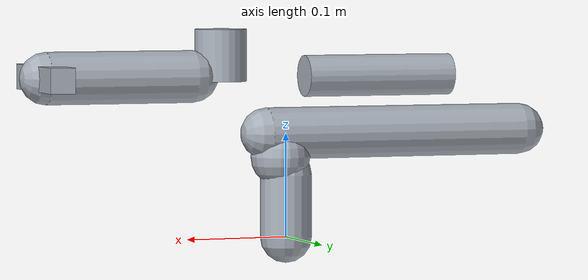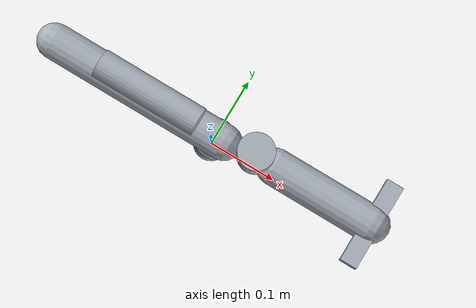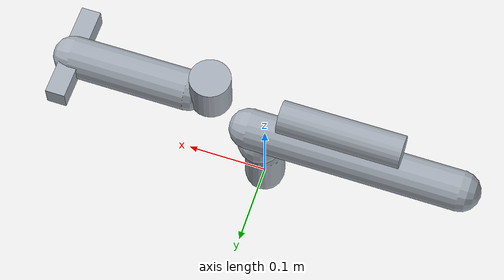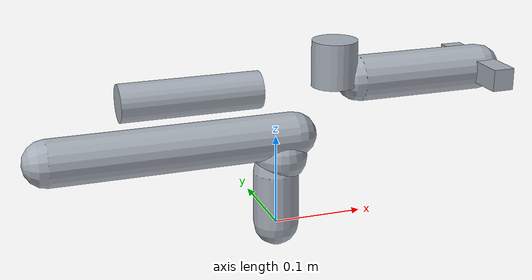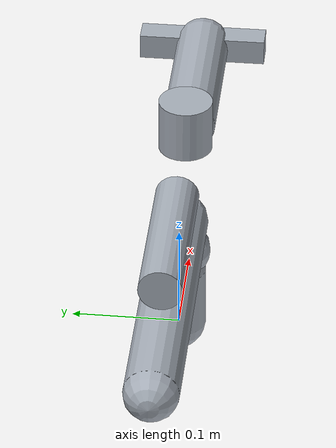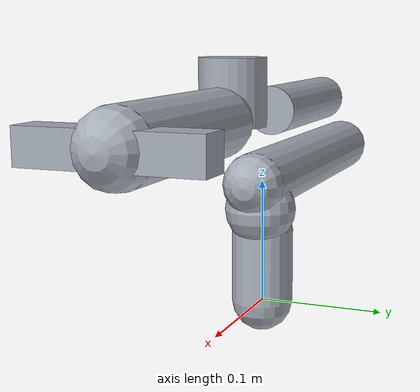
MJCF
<mujoco model="X5_no_mesh">
  <!-- Mesh-free conversion of X5.urdf; generated by convert_urdf_to_nomesh_mjcf.py. -->
  <compiler angle="radian" autolimits="true" balanceinertia="true" />
  <option integrator="implicitfast" cone="elliptic" impratio="10" />
  <default>
    <joint damping="0.1" armature="0.01" />
    <geom rgba="0.65 0.68 0.72 1" friction="0.8 0.1 0.1" condim="3" />
  </default>
  <worldbody>
    <light name="top" pos="0 0 2" mode="trackcom" />
    <body name="base_link">
      <inertial pos="-3.764e-5 0.00006519 0.03037877" quat="1 0 0 0" mass="0.428" diaginertia="0.00060728 0.00060832 0.0001917" />
      <geom type="capsule" size="0.025" fromto="0 0 0 0 0 0.0603" name="base_link_geom" />
      <body name="link1" pos="0 0 0.0603" quat="1 0 0 0">
        <inertial pos="0.00571213 0.0002547 0.01750661" quat="1 0 0 0" mass="0.064" diaginertia="8e-05 3e-05 7e-05" />
        <joint name="joint1" type="hinge" axis="0 0 1" range="-10 10" />
        <geom type="sphere" size="0.02875" pos="0.00571213 0.0002547 0.01750661" name="link1_geom" />
        <body name="link2" pos="0.02 0 0.0402" quat="1 0 0 0">
          <inertial pos="-0.13225701 0.00072373 4.274e-5" quat="1 0 0 0" mass="1.165" diaginertia="0.00057063 0.03669927 0.03683489" />
          <joint name="joint2" type="hinge" axis="0 1 0" range="0 3.14" />
          <geom type="capsule" size="0.025" fromto="0 0 0 -0.264 0 0" name="link2_geom" />
          <body name="link3" pos="-0.264 0 0" quat="-3.6732051e-06 -1 -0 0">
            <inertial pos="0.19096098 0.00069065 -0.05342172" quat="1 0 0 0" mass="0.546" diaginertia="0.00178249 0.02486615 0.02329476" />
            <joint name="joint3" type="hinge" axis="0 1 0" range="0 3.14" />
            <geom type="cylinder" size="0.02 0.075" pos="0.15 0 -0.055" quat="0.707106781 0 0.707106781 0" name="link3_geom" />
            <body name="link4" pos="0.245 0 -0.056" quat="1 0 0 0">
              <inertial pos="0.03092317 0.0066107 -0.03138504" quat="1 0 0 0" mass="0.080971" diaginertia="0.00017832 0.00021182 0.00011328" />
              <joint name="joint4" type="hinge" axis="0 1 0" range="-1.57079633 1.57079633" />
              <geom type="cylinder" size="0.025 0.025" pos="0.06575 -0.001 -0.02" quat="1 0 0 0" name="link4_geom" />
              <body name="link5" pos="0.06575 -0.001 -0.0825" quat="1 0 0 0">
                <inertial pos="0.0040681 0.00000885 0.05120675" quat="1 0 0 0" mass="0.655" diaginertia="0.00254972 0.00255018 0.00026961" />
                <joint name="joint5" type="hinge" axis="0 0 1" range="-1.67 1.67" />
                <geom type="cylinder" size="0.02 0.0125" pos="0.055 0.00 0.083" quat="0.707106781 0 0.707106781 0" name="link5_geom" />
                <body name="link6" pos="0.02845 0 0.0825" quat="-3.6732051e-06 -1 -0 0">
                  <inertial pos="0.05435277 0 0" quat="1 0 0 0" mass="0.581" diaginertia="0.00029 0.00028 0.00045" />
                  <joint name="joint6" type="hinge" axis="1 0 0" range="-1.57 1.57" />
                  <geom type="capsule" size="0.025" fromto="0 0 0 0.145 0 0" name="link6_geom" />
                  <body name="gripper_center" pos="0.145 0.0 0.0" quat="1 0 0 0">
                    <inertial pos="0.0 0.0 0.0" quat="1 0 0 0" mass="1e-08" diaginertia="1e-10 1e-10 1e-10" />
                    <site name="gripper_center" type="sphere" size="0.005" group="5" rgba="0.9 0.9 0.9 1" />
                  </body>
                  <body name="gripper_link1" pos="0.145 0.0 0.0" quat="1 0 0 0">
                    <inertial pos="0.0 0.0 0.0" quat="1 0 0 0" mass="1e-08" diaginertia="1e-10 1e-10 1e-10" />
                    <joint name="gripper_joint1" type="slide" axis="0 1 0" range="-0.04 0" />
                    <geom type="box" size="0.012 0.03 0.012" pos="0 -0.03 0" name="gripper_link1_geom" />
                  </body>
                  <body name="gripper_link2" pos="0.145 0.0 0.0" quat="1 0 0 0">
                    <inertial pos="0.0 0.0 0.0" quat="1 0 0 0" mass="1e-08" diaginertia="1e-10 1e-10 1e-10" />
                    <joint name="gripper_joint2" type="slide" axis="0 1 0" range="0 0.04" />
                    <geom type="box" size="0.012 0.03 0.012" pos="0 0.03 0" name="gripper_link2_geom" />
                  </body>
                </body>
              </body>
            </body>
          </body>
        </body>
      </body>
    </body>
  </worldbody>
  <actuator>
    <position name="joint1_actuator" joint="joint1" kp="200" forcerange="-100 100" ctrlrange="-10 10" />
    <position name="joint2_actuator" joint="joint2" kp="200" forcerange="-100 100" ctrlrange="0 3.14" />
    <position name="joint3_actuator" joint="joint3" kp="200" forcerange="-30 30" ctrlrange="0 3.14" />
    <position name="joint4_actuator" joint="joint4" kp="200" forcerange="-30 30" ctrlrange="-1.57079633 1.57079633" />
    <position name="joint5_actuator" joint="joint5" kp="200" forcerange="-100 100" ctrlrange="-1.67 1.67" />
    <position name="joint6_actuator" joint="joint6" kp="200" forcerange="-100 100" ctrlrange="-1.57 1.57" />
  </actuator>
</mujoco>
